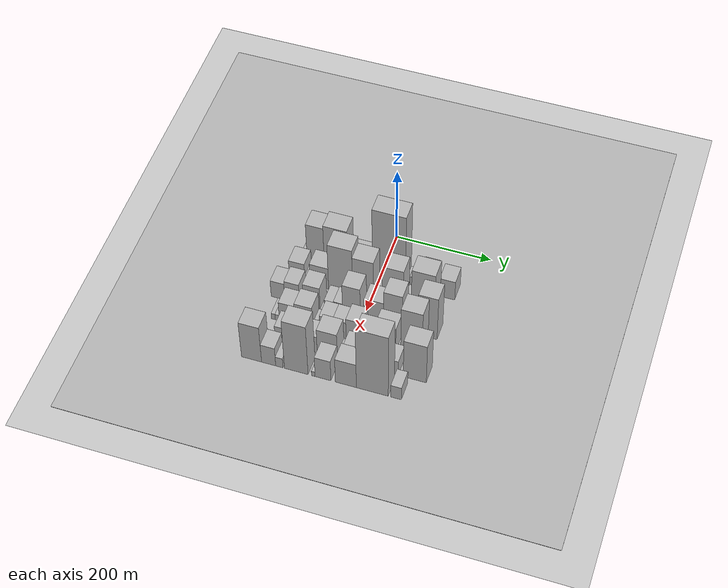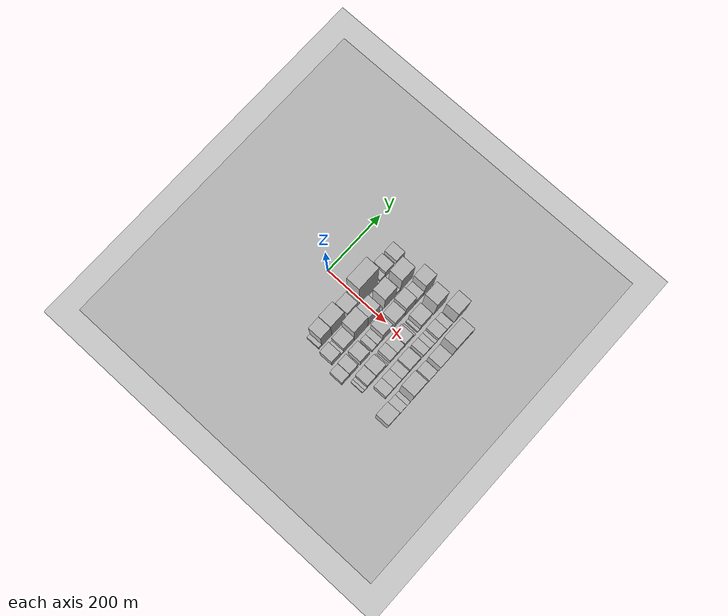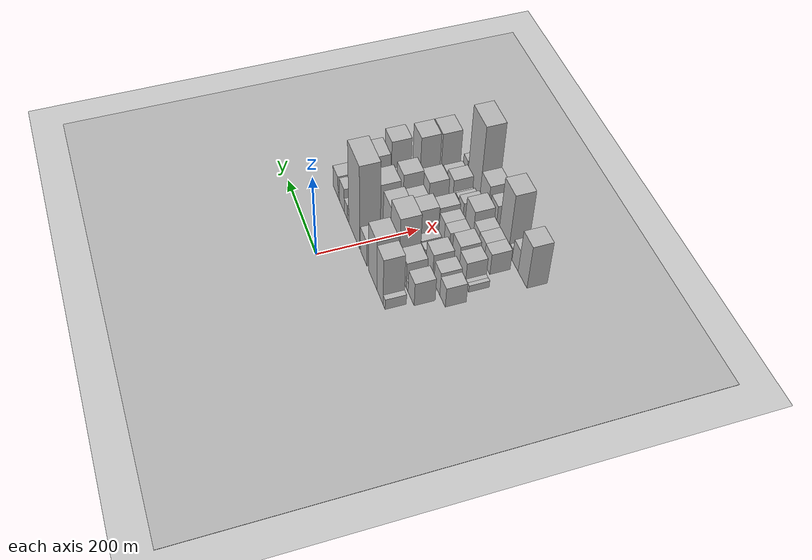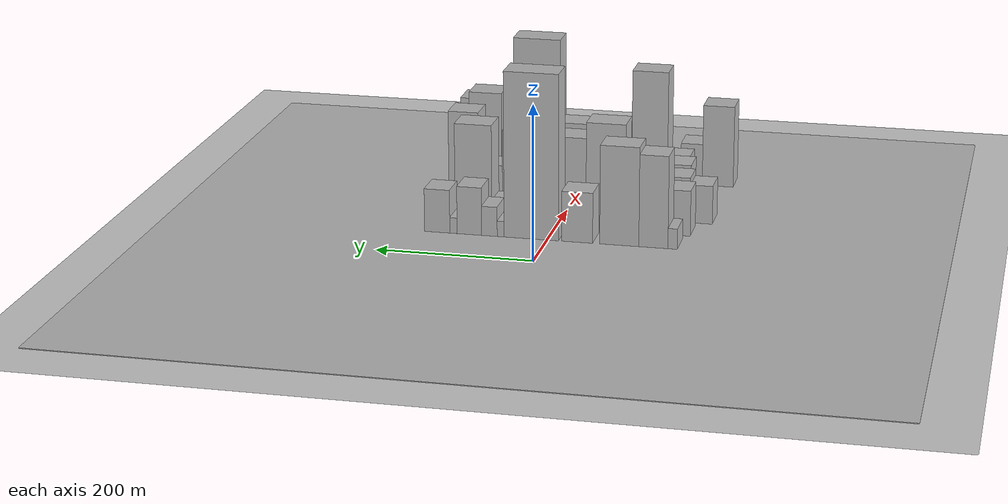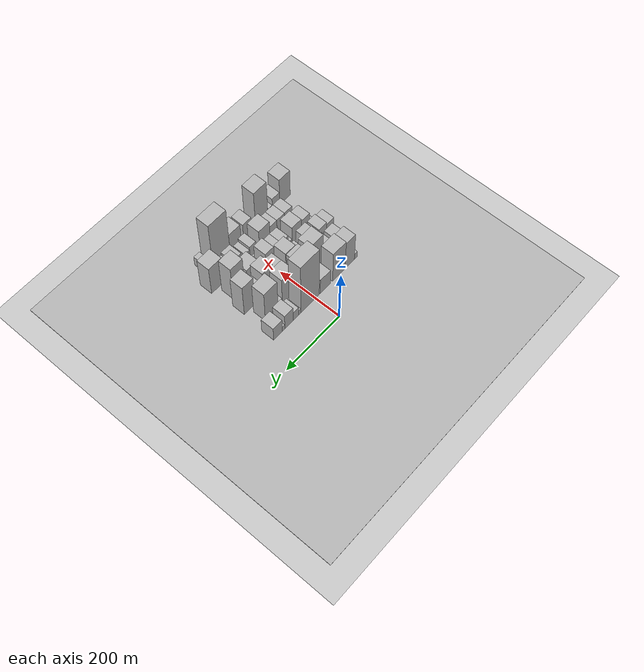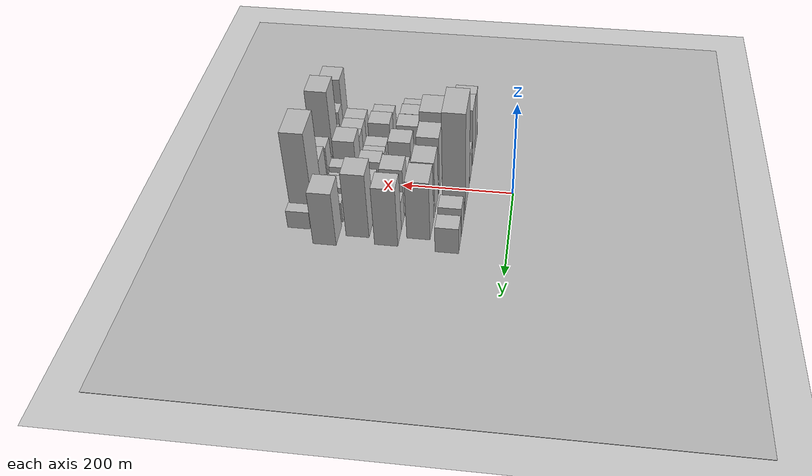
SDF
<sdf version="1.6">
 <world name="default">
  <include><name>ground_plane_1</name><uri>model://HANNAS_ground_plane</uri></include>
  <include>
   <name>ground_plane_2</name>
   <uri>model://HANNAS_ground_plane</uri>
   <pose>100 0 0  0 0 0</pose>
  </include>
  <model name="building_24">
   <static>1</static>
   <pose>100.0000 -158.5348 0 0.000000 0.000000 0.000000</pose>
   <link name="link">
    <pose>0 0 13.50 0 0 0</pose>
    <collision name="collision"><geometry><box><size>40.0000 11.7615 27.0000</size></box></geometry></collision>
    <visual name="visual">
     <cast_shadows>0</cast_shadows>
     <geometry><box><size>40.0000 11.7615 27.0000</size></box></geometry>
     <material>
      <script>
       <uri>model://HANNAS_wall/materials/scripts</uri>
       <uri>model://HANNAS_wall/materials/textures</uri>
       <name>vrc/HANNAS_wall</name>
      </script>
     </material>
    </visual>
   </link>
  </model>
  <model name="building_25">
   <static>1</static>
   <pose>100.0000 -134.3453 0 0.000000 0.000000 0.000000</pose>
   <link name="link">
    <pose>0 0 60.00 0 0 0</pose>
    <collision name="collision"><geometry><box><size>40.0000 36.6176 120.0000</size></box></geometry></collision>
    <visual name="visual">
     <cast_shadows>0</cast_shadows>
     <geometry><box><size>40.0000 36.6176 120.0000</size></box></geometry>
     <material>
      <script>
       <uri>model://HANNAS_wall/materials/scripts</uri>
       <uri>model://HANNAS_wall/materials/textures</uri>
       <name>vrc/HANNAS_wall</name>
      </script>
     </material>
    </visual>
   </link>
  </model>
  <model name="building_26">
   <static>1</static>
   <pose>100.0000 -91.2927 0 0.000000 0.000000 0.000000</pose>
   <link name="link">
    <pose>0 0 64.50 0 0 0</pose>
    <collision name="collision"><geometry><box><size>40.0000 49.4875 129.0000</size></box></geometry></collision>
    <visual name="visual">
     <cast_shadows>0</cast_shadows>
     <geometry><box><size>40.0000 49.4875 129.0000</size></box></geometry>
     <material>
      <script>
       <uri>model://HANNAS_wall/materials/scripts</uri>
       <uri>model://HANNAS_wall/materials/textures</uri>
       <name>vrc/HANNAS_wall</name>
      </script>
     </material>
    </visual>
   </link>
  </model>
  <model name="building_27">
   <static>1</static>
   <pose>100.0000 -37.7616 0 0.000000 0.000000 0.000000</pose>
   <link name="link">
    <pose>0 0 33.00 0 0 0</pose>
    <collision name="collision"><geometry><box><size>40.0000 39.5747 66.0000</size></box></geometry></collision>
    <visual name="visual">
     <cast_shadows>0</cast_shadows>
     <geometry><box><size>40.0000 39.5747 66.0000</size></box></geometry>
     <material>
      <script>
       <uri>model://HANNAS_wall/materials/scripts</uri>
       <uri>model://HANNAS_wall/materials/textures</uri>
       <name>vrc/HANNAS_wall</name>
      </script>
     </material>
    </visual>
   </link>
  </model>
  <model name="building_28">
   <static>1</static>
   <pose>100.0000 20.9367 0 0.000000 0.000000 0.000000</pose>
   <link name="link">
    <pose>0 0 108.00 0 0 0</pose>
    <collision name="collision"><geometry><box><size>40.0000 69.8217 216.0000</size></box></geometry></collision>
    <visual name="visual">
     <cast_shadows>0</cast_shadows>
     <geometry><box><size>40.0000 69.8217 216.0000</size></box></geometry>
     <material>
      <script>
       <uri>model://HANNAS_wall/materials/scripts</uri>
       <uri>model://HANNAS_wall/materials/textures</uri>
       <name>vrc/HANNAS_wall</name>
      </script>
     </material>
    </visual>
   </link>
  </model>
  <model name="building_29">
   <static>1</static>
   <pose>100.0000 60.2967 0 0.000000 0.000000 0.000000</pose>
   <link name="link">
    <pose>0 0 10.50 0 0 0</pose>
    <collision name="collision"><geometry><box><size>40.0000 8.8983 21.0000</size></box></geometry></collision>
    <visual name="visual">
     <cast_shadows>0</cast_shadows>
     <geometry><box><size>40.0000 8.8983 21.0000</size></box></geometry>
     <material>
      <script>
       <uri>model://HANNAS_wall/materials/scripts</uri>
       <uri>model://HANNAS_wall/materials/textures</uri>
       <name>vrc/HANNAS_wall</name>
      </script>
     </material>
    </visual>
   </link>
  </model>
  <model name="building_30">
   <static>1</static>
   <pose>100.0000 74.8387 0 0.000000 0.000000 0.000000</pose>
   <link name="link">
    <pose>0 0 19.50 0 0 0</pose>
    <collision name="collision"><geometry><box><size>40.0000 20.1858 39.0000</size></box></geometry></collision>
    <visual name="visual">
     <cast_shadows>0</cast_shadows>
     <geometry><box><size>40.0000 20.1858 39.0000</size></box></geometry>
     <material>
      <script>
       <uri>model://HANNAS_wall/materials/scripts</uri>
       <uri>model://HANNAS_wall/materials/textures</uri>
       <name>vrc/HANNAS_wall</name>
      </script>
     </material>
    </visual>
   </link>
  </model>
  <model name="building_31">
   <static>1</static>
   <pose>100.0000 100.7868 0 0.000000 0.000000 0.000000</pose>
   <link name="link">
    <pose>0 0 31.50 0 0 0</pose>
    <collision name="collision"><geometry><box><size>40.0000 31.7105 63.0000</size></box></geometry></collision>
    <visual name="visual">
     <cast_shadows>0</cast_shadows>
     <geometry><box><size>40.0000 31.7105 63.0000</size></box></geometry>
     <material>
      <script>
       <uri>model://HANNAS_wall/materials/scripts</uri>
       <uri>model://HANNAS_wall/materials/textures</uri>
       <name>vrc/HANNAS_wall</name>
      </script>
     </material>
    </visual>
   </link>
  </model>
  <model name="building_32">
   <static>1</static>
   <pose>100.0000 121.3697 0 0.000000 0.000000 0.000000</pose>
   <link name="link">
    <pose>0 0 10.50 0 0 0</pose>
    <collision name="collision"><geometry><box><size>40.0000 9.4551 21.0000</size></box></geometry></collision>
    <visual name="visual">
     <cast_shadows>0</cast_shadows>
     <geometry><box><size>40.0000 9.4551 21.0000</size></box></geometry>
     <material>
      <script>
       <uri>model://HANNAS_wall/materials/scripts</uri>
       <uri>model://HANNAS_wall/materials/textures</uri>
       <name>vrc/HANNAS_wall</name>
      </script>
     </material>
    </visual>
   </link>
  </model>
  <model name="building_33">
   <static>1</static>
   <pose>100.0000 142.5122 0 0.000000 0.000000 0.000000</pose>
   <link name="link">
    <pose>0 0 28.50 0 0 0</pose>
    <collision name="collision"><geometry><box><size>40.0000 32.8300 57.0000</size></box></geometry></collision>
    <visual name="visual">
     <cast_shadows>0</cast_shadows>
     <geometry><box><size>40.0000 32.8300 57.0000</size></box></geometry>
     <material>
      <script>
       <uri>model://HANNAS_wall/materials/scripts</uri>
       <uri>model://HANNAS_wall/materials/textures</uri>
       <name>vrc/HANNAS_wall</name>
      </script>
     </material>
    </visual>
   </link>
  </model>
  <model name="building_69">
   <static>1</static>
   <pose>152.0000 -155.6423 0 0.000000 0.000000 0.000000</pose>
   <link name="link">
    <pose>0 0 30.00 0 0 0</pose>
    <collision name="collision"><geometry><box><size>40.0000 33.0803 60.0000</size></box></geometry></collision>
    <visual name="visual">
     <cast_shadows>0</cast_shadows>
     <geometry><box><size>40.0000 33.0803 60.0000</size></box></geometry>
     <material>
      <script>
       <uri>model://HANNAS_wall/materials/scripts</uri>
       <uri>model://HANNAS_wall/materials/textures</uri>
       <name>vrc/HANNAS_wall</name>
      </script>
     </material>
    </visual>
   </link>
  </model>
  <model name="building_70">
   <static>1</static>
   <pose>152.0000 -133.5895 0 0.000000 0.000000 0.000000</pose>
   <link name="link">
    <pose>0 0 12.00 0 0 0</pose>
    <collision name="collision"><geometry><box><size>40.0000 11.0254 24.0000</size></box></geometry></collision>
    <visual name="visual">
     <cast_shadows>0</cast_shadows>
     <geometry><box><size>40.0000 11.0254 24.0000</size></box></geometry>
     <material>
      <script>
       <uri>model://HANNAS_wall/materials/scripts</uri>
       <uri>model://HANNAS_wall/materials/textures</uri>
       <name>vrc/HANNAS_wall</name>
      </script>
     </material>
    </visual>
   </link>
  </model>
  <model name="building_71">
   <static>1</static>
   <pose>152.0000 -108.5377 0 0.000000 0.000000 0.000000</pose>
   <link name="link">
    <pose>0 0 33.00 0 0 0</pose>
    <collision name="collision"><geometry><box><size>40.0000 39.0782 66.0000</size></box></geometry></collision>
    <visual name="visual">
     <cast_shadows>0</cast_shadows>
     <geometry><box><size>40.0000 39.0782 66.0000</size></box></geometry>
     <material>
      <script>
       <uri>model://HANNAS_wall/materials/scripts</uri>
       <uri>model://HANNAS_wall/materials/textures</uri>
       <name>vrc/HANNAS_wall</name>
      </script>
     </material>
    </visual>
   </link>
  </model>
  <model name="building_72">
   <static>1</static>
   <pose>152.0000 -63.7319 0 0.000000 0.000000 0.000000</pose>
   <link name="link">
    <pose>0 0 70.50 0 0 0</pose>
    <collision name="collision"><geometry><box><size>40.0000 50.5334 141.0000</size></box></geometry></collision>
    <visual name="visual">
     <cast_shadows>0</cast_shadows>
     <geometry><box><size>40.0000 50.5334 141.0000</size></box></geometry>
     <material>
      <script>
       <uri>model://HANNAS_wall/materials/scripts</uri>
       <uri>model://HANNAS_wall/materials/textures</uri>
       <name>vrc/HANNAS_wall</name>
      </script>
     </material>
    </visual>
   </link>
  </model>
  <model name="building_73">
   <static>1</static>
   <pose>152.0000 -16.3836 0 0.000000 0.000000 0.000000</pose>
   <link name="link">
    <pose>0 0 60.00 0 0 0</pose>
    <collision name="collision"><geometry><box><size>40.0000 44.1631 120.0000</size></box></geometry></collision>
    <visual name="visual">
     <cast_shadows>0</cast_shadows>
     <geometry><box><size>40.0000 44.1631 120.0000</size></box></geometry>
     <material>
      <script>
       <uri>model://HANNAS_wall/materials/scripts</uri>
       <uri>model://HANNAS_wall/materials/textures</uri>
       <name>vrc/HANNAS_wall</name>
      </script>
     </material>
    </visual>
   </link>
  </model>
  <model name="building_74">
   <static>1</static>
   <pose>152.0000 11.5250 0 0.000000 0.000000 0.000000</pose>
   <link name="link">
    <pose>0 0 12.00 0 0 0</pose>
    <collision name="collision"><geometry><box><size>40.0000 11.6542 24.0000</size></box></geometry></collision>
    <visual name="visual">
     <cast_shadows>0</cast_shadows>
     <geometry><box><size>40.0000 11.6542 24.0000</size></box></geometry>
     <material>
      <script>
       <uri>model://HANNAS_wall/materials/scripts</uri>
       <uri>model://HANNAS_wall/materials/textures</uri>
       <name>vrc/HANNAS_wall</name>
      </script>
     </material>
    </visual>
   </link>
  </model>
  <model name="building_75">
   <static>1</static>
   <pose>152.0000 45.7108 0 0.000000 0.000000 0.000000</pose>
   <link name="link">
    <pose>0 0 58.50 0 0 0</pose>
    <collision name="collision"><geometry><box><size>40.0000 44.7173 117.0000</size></box></geometry></collision>
    <visual name="visual">
     <cast_shadows>0</cast_shadows>
     <geometry><box><size>40.0000 44.7173 117.0000</size></box></geometry>
     <material>
      <script>
       <uri>model://HANNAS_wall/materials/scripts</uri>
       <uri>model://HANNAS_wall/materials/textures</uri>
       <name>vrc/HANNAS_wall</name>
      </script>
     </material>
    </visual>
   </link>
  </model>
  <model name="building_76">
   <static>1</static>
   <pose>152.0000 76.0577 0 0.000000 0.000000 0.000000</pose>
   <link name="link">
    <pose>0 0 15.00 0 0 0</pose>
    <collision name="collision"><geometry><box><size>40.0000 15.9766 30.0000</size></box></geometry></collision>
    <visual name="visual">
     <cast_shadows>0</cast_shadows>
     <geometry><box><size>40.0000 15.9766 30.0000</size></box></geometry>
     <material>
      <script>
       <uri>model://HANNAS_wall/materials/scripts</uri>
       <uri>model://HANNAS_wall/materials/textures</uri>
       <name>vrc/HANNAS_wall</name>
      </script>
     </material>
    </visual>
   </link>
  </model>
  <model name="building_77">
   <static>1</static>
   <pose>152.0000 108.1435 0 0.000000 0.000000 0.000000</pose>
   <link name="link">
    <pose>0 0 64.50 0 0 0</pose>
    <collision name="collision"><geometry><box><size>40.0000 48.1950 129.0000</size></box></geometry></collision>
    <visual name="visual">
     <cast_shadows>0</cast_shadows>
     <geometry><box><size>40.0000 48.1950 129.0000</size></box></geometry>
     <material>
      <script>
       <uri>model://HANNAS_wall/materials/scripts</uri>
       <uri>model://HANNAS_wall/materials/textures</uri>
       <name>vrc/HANNAS_wall</name>
      </script>
     </material>
    </visual>
   </link>
  </model>
  <model name="building_117">
   <static>1</static>
   <pose>204.0000 -177.6629 0 0.000000 0.000000 0.000000</pose>
   <link name="link">
    <pose>0 0 25.50 0 0 0</pose>
    <collision name="collision"><geometry><box><size>40.0000 28.9055 51.0000</size></box></geometry></collision>
    <visual name="visual">
     <cast_shadows>0</cast_shadows>
     <geometry><box><size>40.0000 28.9055 51.0000</size></box></geometry>
     <material>
      <script>
       <uri>model://HANNAS_wall/materials/scripts</uri>
       <uri>model://HANNAS_wall/materials/textures</uri>
       <name>vrc/HANNAS_wall</name>
      </script>
     </material>
    </visual>
   </link>
  </model>
  <model name="building_118">
   <static>1</static>
   <pose>204.0000 -147.7347 0 0.000000 0.000000 0.000000</pose>
   <link name="link">
    <pose>0 0 30.00 0 0 0</pose>
    <collision name="collision"><geometry><box><size>40.0000 30.9509 60.0000</size></box></geometry></collision>
    <visual name="visual">
     <cast_shadows>0</cast_shadows>
     <geometry><box><size>40.0000 30.9509 60.0000</size></box></geometry>
     <material>
      <script>
       <uri>model://HANNAS_wall/materials/scripts</uri>
       <uri>model://HANNAS_wall/materials/textures</uri>
       <name>vrc/HANNAS_wall</name>
      </script>
     </material>
    </visual>
   </link>
  </model>
  <model name="building_119">
   <static>1</static>
   <pose>204.0000 -106.5356 0 0.000000 0.000000 0.000000</pose>
   <link name="link">
    <pose>0 0 33.00 0 0 0</pose>
    <collision name="collision"><geometry><box><size>40.0000 35.4473 66.0000</size></box></geometry></collision>
    <visual name="visual">
     <cast_shadows>0</cast_shadows>
     <geometry><box><size>40.0000 35.4473 66.0000</size></box></geometry>
     <material>
      <script>
       <uri>model://HANNAS_wall/materials/scripts</uri>
       <uri>model://HANNAS_wall/materials/textures</uri>
       <name>vrc/HANNAS_wall</name>
      </script>
     </material>
    </visual>
   </link>
  </model>
  <model name="building_120">
   <static>1</static>
   <pose>204.0000 -70.2847 0 0.000000 0.000000 0.000000</pose>
   <link name="link">
    <pose>0 0 16.50 0 0 0</pose>
    <collision name="collision"><geometry><box><size>40.0000 19.0546 33.0000</size></box></geometry></collision>
    <visual name="visual">
     <cast_shadows>0</cast_shadows>
     <geometry><box><size>40.0000 19.0546 33.0000</size></box></geometry>
     <material>
      <script>
       <uri>model://HANNAS_wall/materials/scripts</uri>
       <uri>model://HANNAS_wall/materials/textures</uri>
       <name>vrc/HANNAS_wall</name>
      </script>
     </material>
    </visual>
   </link>
  </model>
  <model name="building_121">
   <static>1</static>
   <pose>204.0000 -51.2398 0 0.000000 0.000000 0.000000</pose>
   <link name="link">
    <pose>0 0 18.00 0 0 0</pose>
    <collision name="collision"><geometry><box><size>40.0000 19.0352 36.0000</size></box></geometry></collision>
    <visual name="visual">
     <cast_shadows>0</cast_shadows>
     <geometry><box><size>40.0000 19.0352 36.0000</size></box></geometry>
     <material>
      <script>
       <uri>model://HANNAS_wall/materials/scripts</uri>
       <uri>model://HANNAS_wall/materials/textures</uri>
       <name>vrc/HANNAS_wall</name>
      </script>
     </material>
    </visual>
   </link>
  </model>
  <model name="building_122">
   <static>1</static>
   <pose>204.0000 -23.2414 0 0.000000 0.000000 0.000000</pose>
   <link name="link">
    <pose>0 0 48.00 0 0 0</pose>
    <collision name="collision"><geometry><box><size>40.0000 36.9616 96.0000</size></box></geometry></collision>
    <visual name="visual">
     <cast_shadows>0</cast_shadows>
     <geometry><box><size>40.0000 36.9616 96.0000</size></box></geometry>
     <material>
      <script>
       <uri>model://HANNAS_wall/materials/scripts</uri>
       <uri>model://HANNAS_wall/materials/textures</uri>
       <name>vrc/HANNAS_wall</name>
      </script>
     </material>
    </visual>
   </link>
  </model>
  <model name="building_123">
   <static>1</static>
   <pose>204.0000 -0.4595 0 0.000000 0.000000 0.000000</pose>
   <link name="link">
    <pose>0 0 10.50 0 0 0</pose>
    <collision name="collision"><geometry><box><size>40.0000 8.6023 21.0000</size></box></geometry></collision>
    <visual name="visual">
     <cast_shadows>0</cast_shadows>
     <geometry><box><size>40.0000 8.6023 21.0000</size></box></geometry>
     <material>
      <script>
       <uri>model://HANNAS_wall/materials/scripts</uri>
       <uri>model://HANNAS_wall/materials/textures</uri>
       <name>vrc/HANNAS_wall</name>
      </script>
     </material>
    </visual>
   </link>
  </model>
  <model name="building_124">
   <static>1</static>
   <pose>204.0000 23.7971 0 0.000000 0.000000 0.000000</pose>
   <link name="link">
    <pose>0 0 36.00 0 0 0</pose>
    <collision name="collision"><geometry><box><size>40.0000 39.9108 72.0000</size></box></geometry></collision>
    <visual name="visual">
     <cast_shadows>0</cast_shadows>
     <geometry><box><size>40.0000 39.9108 72.0000</size></box></geometry>
     <material>
      <script>
       <uri>model://HANNAS_wall/materials/scripts</uri>
       <uri>model://HANNAS_wall/materials/textures</uri>
       <name>vrc/HANNAS_wall</name>
      </script>
     </material>
    </visual>
   </link>
  </model>
  <model name="building_125">
   <static>1</static>
   <pose>204.0000 62.9266 0 0.000000 0.000000 0.000000</pose>
   <link name="link">
    <pose>0 0 54.00 0 0 0</pose>
    <collision name="collision"><geometry><box><size>40.0000 38.3483 108.0000</size></box></geometry></collision>
    <visual name="visual">
     <cast_shadows>0</cast_shadows>
     <geometry><box><size>40.0000 38.3483 108.0000</size></box></geometry>
     <material>
      <script>
       <uri>model://HANNAS_wall/materials/scripts</uri>
       <uri>model://HANNAS_wall/materials/textures</uri>
       <name>vrc/HANNAS_wall</name>
      </script>
     </material>
    </visual>
   </link>
  </model>
  <model name="building_126">
   <static>1</static>
   <pose>204.0000 97.9361 0 0.000000 0.000000 0.000000</pose>
   <link name="link">
    <pose>0 0 30.00 0 0 0</pose>
    <collision name="collision"><geometry><box><size>40.0000 31.6707 60.0000</size></box></geometry></collision>
    <visual name="visual">
     <cast_shadows>0</cast_shadows>
     <geometry><box><size>40.0000 31.6707 60.0000</size></box></geometry>
     <material>
      <script>
       <uri>model://HANNAS_wall/materials/scripts</uri>
       <uri>model://HANNAS_wall/materials/textures</uri>
       <name>vrc/HANNAS_wall</name>
      </script>
     </material>
    </visual>
   </link>
  </model>
  <model name="building_127">
   <static>1</static>
   <pose>204.0000 133.6687 0 0.000000 0.000000 0.000000</pose>
   <link name="link">
    <pose>0 0 64.50 0 0 0</pose>
    <collision name="collision"><geometry><box><size>40.0000 39.7944 129.0000</size></box></geometry></collision>
    <visual name="visual">
     <cast_shadows>0</cast_shadows>
     <geometry><box><size>40.0000 39.7944 129.0000</size></box></geometry>
     <material>
      <script>
       <uri>model://HANNAS_wall/materials/scripts</uri>
       <uri>model://HANNAS_wall/materials/textures</uri>
       <name>vrc/HANNAS_wall</name>
      </script>
     </material>
    </visual>
   </link>
  </model>
  <model name="building_170">
   <static>1</static>
   <pose>256.0000 -168.5924 0 0.000000 0.000000 0.000000</pose>
   <link name="link">
    <pose>0 0 9.00 0 0 0</pose>
    <collision name="collision"><geometry><box><size>40.0000 7.9097 18.0000</size></box></geometry></collision>
    <visual name="visual">
     <cast_shadows>0</cast_shadows>
     <geometry><box><size>40.0000 7.9097 18.0000</size></box></geometry>
     <material>
      <script>
       <uri>model://HANNAS_wall/materials/scripts</uri>
       <uri>model://HANNAS_wall/materials/textures</uri>
       <name>vrc/HANNAS_wall</name>
      </script>
     </material>
    </visual>
   </link>
  </model>
  <model name="building_171">
   <static>1</static>
   <pose>256.0000 -160.1804 0 0.000000 0.000000 0.000000</pose>
   <link name="link">
    <pose>0 0 9.00 0 0 0</pose>
    <collision name="collision"><geometry><box><size>40.0000 8.9143 18.0000</size></box></geometry></collision>
    <visual name="visual">
     <cast_shadows>0</cast_shadows>
     <geometry><box><size>40.0000 8.9143 18.0000</size></box></geometry>
     <material>
      <script>
       <uri>model://HANNAS_wall/materials/scripts</uri>
       <uri>model://HANNAS_wall/materials/textures</uri>
       <name>vrc/HANNAS_wall</name>
      </script>
     </material>
    </visual>
   </link>
  </model>
  <model name="building_172">
   <static>1</static>
   <pose>256.0000 -139.3355 0 0.000000 0.000000 0.000000</pose>
   <link name="link">
    <pose>0 0 30.00 0 0 0</pose>
    <collision name="collision"><geometry><box><size>40.0000 32.7756 60.0000</size></box></geometry></collision>
    <visual name="visual">
     <cast_shadows>0</cast_shadows>
     <geometry><box><size>40.0000 32.7756 60.0000</size></box></geometry>
     <material>
      <script>
       <uri>model://HANNAS_wall/materials/scripts</uri>
       <uri>model://HANNAS_wall/materials/textures</uri>
       <name>vrc/HANNAS_wall</name>
      </script>
     </material>
    </visual>
   </link>
  </model>
  <model name="building_173">
   <static>1</static>
   <pose>256.0000 -104.7134 0 0.000000 0.000000 0.000000</pose>
   <link name="link">
    <pose>0 0 34.50 0 0 0</pose>
    <collision name="collision"><geometry><box><size>40.0000 36.4687 69.0000</size></box></geometry></collision>
    <visual name="visual">
     <cast_shadows>0</cast_shadows>
     <geometry><box><size>40.0000 36.4687 69.0000</size></box></geometry>
     <material>
      <script>
       <uri>model://HANNAS_wall/materials/scripts</uri>
       <uri>model://HANNAS_wall/materials/textures</uri>
       <name>vrc/HANNAS_wall</name>
      </script>
     </material>
    </visual>
   </link>
  </model>
  <model name="building_174">
   <static>1</static>
   <pose>256.0000 -81.9794 0 0.000000 0.000000 0.000000</pose>
   <link name="link">
    <pose>0 0 9.00 0 0 0</pose>
    <collision name="collision"><geometry><box><size>40.0000 8.9992 18.0000</size></box></geometry></collision>
    <visual name="visual">
     <cast_shadows>0</cast_shadows>
     <geometry><box><size>40.0000 8.9992 18.0000</size></box></geometry>
     <material>
      <script>
       <uri>model://HANNAS_wall/materials/scripts</uri>
       <uri>model://HANNAS_wall/materials/textures</uri>
       <name>vrc/HANNAS_wall</name>
      </script>
     </material>
    </visual>
   </link>
  </model>
  <model name="building_175">
   <static>1</static>
   <pose>256.0000 -57.8144 0 0.000000 0.000000 0.000000</pose>
   <link name="link">
    <pose>0 0 25.50 0 0 0</pose>
    <collision name="collision"><geometry><box><size>40.0000 27.3308 51.0000</size></box></geometry></collision>
    <visual name="visual">
     <cast_shadows>0</cast_shadows>
     <geometry><box><size>40.0000 27.3308 51.0000</size></box></geometry>
     <material>
      <script>
       <uri>model://HANNAS_wall/materials/scripts</uri>
       <uri>model://HANNAS_wall/materials/textures</uri>
       <name>vrc/HANNAS_wall</name>
      </script>
     </material>
    </visual>
   </link>
  </model>
  <model name="building_176">
   <static>1</static>
   <pose>256.0000 -30.4677 0 0.000000 0.000000 0.000000</pose>
   <link name="link">
    <pose>0 0 25.50 0 0 0</pose>
    <collision name="collision"><geometry><box><size>40.0000 27.3625 51.0000</size></box></geometry></collision>
    <visual name="visual">
     <cast_shadows>0</cast_shadows>
     <geometry><box><size>40.0000 27.3625 51.0000</size></box></geometry>
     <material>
      <script>
       <uri>model://HANNAS_wall/materials/scripts</uri>
       <uri>model://HANNAS_wall/materials/textures</uri>
       <name>vrc/HANNAS_wall</name>
      </script>
     </material>
    </visual>
   </link>
  </model>
  <model name="building_177">
   <static>1</static>
   <pose>256.0000 -0.8448 0 0.000000 0.000000 0.000000</pose>
   <link name="link">
    <pose>0 0 31.50 0 0 0</pose>
    <collision name="collision"><geometry><box><size>40.0000 31.8834 63.0000</size></box></geometry></collision>
    <visual name="visual">
     <cast_shadows>0</cast_shadows>
     <geometry><box><size>40.0000 31.8834 63.0000</size></box></geometry>
     <material>
      <script>
       <uri>model://HANNAS_wall/materials/scripts</uri>
       <uri>model://HANNAS_wall/materials/textures</uri>
       <name>vrc/HANNAS_wall</name>
      </script>
     </material>
    </visual>
   </link>
  </model>
  <model name="building_178">
   <static>1</static>
   <pose>256.0000 23.0450 0 0.000000 0.000000 0.000000</pose>
   <link name="link">
    <pose>0 0 9.00 0 0 0</pose>
    <collision name="collision"><geometry><box><size>40.0000 7.8961 18.0000</size></box></geometry></collision>
    <visual name="visual">
     <cast_shadows>0</cast_shadows>
     <geometry><box><size>40.0000 7.8961 18.0000</size></box></geometry>
     <material>
      <script>
       <uri>model://HANNAS_wall/materials/scripts</uri>
       <uri>model://HANNAS_wall/materials/textures</uri>
       <name>vrc/HANNAS_wall</name>
      </script>
     </material>
    </visual>
   </link>
  </model>
  <model name="building_179">
   <static>1</static>
   <pose>256.0000 38.4373 0 0.000000 0.000000 0.000000</pose>
   <link name="link">
    <pose>0 0 9.00 0 0 0</pose>
    <collision name="collision"><geometry><box><size>40.0000 8.8885 18.0000</size></box></geometry></collision>
    <visual name="visual">
     <cast_shadows>0</cast_shadows>
     <geometry><box><size>40.0000 8.8885 18.0000</size></box></geometry>
     <material>
      <script>
       <uri>model://HANNAS_wall/materials/scripts</uri>
       <uri>model://HANNAS_wall/materials/textures</uri>
       <name>vrc/HANNAS_wall</name>
      </script>
     </material>
    </visual>
   </link>
  </model>
  <model name="building_180">
   <static>1</static>
   <pose>256.0000 64.0657 0 0.000000 0.000000 0.000000</pose>
   <link name="link">
    <pose>0 0 36.00 0 0 0</pose>
    <collision name="collision"><geometry><box><size>40.0000 42.3682 72.0000</size></box></geometry></collision>
    <visual name="visual">
     <cast_shadows>0</cast_shadows>
     <geometry><box><size>40.0000 42.3682 72.0000</size></box></geometry>
     <material>
      <script>
       <uri>model://HANNAS_wall/materials/scripts</uri>
       <uri>model://HANNAS_wall/materials/textures</uri>
       <name>vrc/HANNAS_wall</name>
      </script>
     </material>
    </visual>
   </link>
  </model>
  <model name="building_181">
   <static>1</static>
   <pose>256.0000 116.9688 0 0.000000 0.000000 0.000000</pose>
   <link name="link">
    <pose>0 0 70.50 0 0 0</pose>
    <collision name="collision"><geometry><box><size>40.0000 43.4380 141.0000</size></box></geometry></collision>
    <visual name="visual">
     <cast_shadows>0</cast_shadows>
     <geometry><box><size>40.0000 43.4380 141.0000</size></box></geometry>
     <material>
      <script>
       <uri>model://HANNAS_wall/materials/scripts</uri>
       <uri>model://HANNAS_wall/materials/textures</uri>
       <name>vrc/HANNAS_wall</name>
      </script>
     </material>
    </visual>
   </link>
  </model>
  <model name="building_225">
   <static>1</static>
   <pose>308.0000 -130.4877 0 0.000000 0.000000 0.000000</pose>
   <link name="link">
    <pose>0 0 27.00 0 0 0</pose>
    <collision name="collision"><geometry><box><size>40.0000 29.1803 54.0000</size></box></geometry></collision>
    <visual name="visual">
     <cast_shadows>0</cast_shadows>
     <geometry><box><size>40.0000 29.1803 54.0000</size></box></geometry>
     <material>
      <script>
       <uri>model://HANNAS_wall/materials/scripts</uri>
       <uri>model://HANNAS_wall/materials/textures</uri>
       <name>vrc/HANNAS_wall</name>
      </script>
     </material>
    </visual>
   </link>
  </model>
  <model name="building_226">
   <static>1</static>
   <pose>308.0000 -100.9465 0 0.000000 0.000000 0.000000</pose>
   <link name="link">
    <pose>0 0 27.00 0 0 0</pose>
    <collision name="collision"><geometry><box><size>40.0000 29.9021 54.0000</size></box></geometry></collision>
    <visual name="visual">
     <cast_shadows>0</cast_shadows>
     <geometry><box><size>40.0000 29.9021 54.0000</size></box></geometry>
     <material>
      <script>
       <uri>model://HANNAS_wall/materials/scripts</uri>
       <uri>model://HANNAS_wall/materials/textures</uri>
       <name>vrc/HANNAS_wall</name>
      </script>
     </material>
    </visual>
   </link>
  </model>
  <model name="building_227">
   <static>1</static>
   <pose>308.0000 -72.1960 0 0.000000 0.000000 0.000000</pose>
   <link name="link">
    <pose>0 0 27.00 0 0 0</pose>
    <collision name="collision"><geometry><box><size>40.0000 27.5989 54.0000</size></box></geometry></collision>
    <visual name="visual">
     <cast_shadows>0</cast_shadows>
     <geometry><box><size>40.0000 27.5989 54.0000</size></box></geometry>
     <material>
      <script>
       <uri>model://HANNAS_wall/materials/scripts</uri>
       <uri>model://HANNAS_wall/materials/textures</uri>
       <name>vrc/HANNAS_wall</name>
      </script>
     </material>
    </visual>
   </link>
  </model>
  <model name="building_228">
   <static>1</static>
   <pose>308.0000 -37.8794 0 0.000000 0.000000 0.000000</pose>
   <link name="link">
    <pose>0 0 39.00 0 0 0</pose>
    <collision name="collision"><geometry><box><size>40.0000 41.0342 78.0000</size></box></geometry></collision>
    <visual name="visual">
     <cast_shadows>0</cast_shadows>
     <geometry><box><size>40.0000 41.0342 78.0000</size></box></geometry>
     <material>
      <script>
       <uri>model://HANNAS_wall/materials/scripts</uri>
       <uri>model://HANNAS_wall/materials/textures</uri>
       <name>vrc/HANNAS_wall</name>
      </script>
     </material>
    </visual>
   </link>
  </model>
  <model name="building_229">
   <static>1</static>
   <pose>308.0000 -13.9209 0 0.000000 0.000000 0.000000</pose>
   <link name="link">
    <pose>0 0 7.50 0 0 0</pose>
    <collision name="collision"><geometry><box><size>40.0000 6.8829 15.0000</size></box></geometry></collision>
    <visual name="visual">
     <cast_shadows>0</cast_shadows>
     <geometry><box><size>40.0000 6.8829 15.0000</size></box></geometry>
     <material>
      <script>
       <uri>model://HANNAS_wall/materials/scripts</uri>
       <uri>model://HANNAS_wall/materials/textures</uri>
       <name>vrc/HANNAS_wall</name>
      </script>
     </material>
    </visual>
   </link>
  </model>
  <model name="building_230">
   <static>1</static>
   <pose>308.0000 6.6875 0 0.000000 0.000000 0.000000</pose>
   <link name="link">
    <pose>0 0 24.00 0 0 0</pose>
    <collision name="collision"><geometry><box><size>40.0000 24.3337 48.0000</size></box></geometry></collision>
    <visual name="visual">
     <cast_shadows>0</cast_shadows>
     <geometry><box><size>40.0000 24.3337 48.0000</size></box></geometry>
     <material>
      <script>
       <uri>model://HANNAS_wall/materials/scripts</uri>
       <uri>model://HANNAS_wall/materials/textures</uri>
       <name>vrc/HANNAS_wall</name>
      </script>
     </material>
    </visual>
   </link>
  </model>
  <model name="building_231">
   <static>1</static>
   <pose>308.0000 28.2699 0 0.000000 0.000000 0.000000</pose>
   <link name="link">
    <pose>0 0 18.00 0 0 0</pose>
    <collision name="collision"><geometry><box><size>40.0000 18.8312 36.0000</size></box></geometry></collision>
    <visual name="visual">
     <cast_shadows>0</cast_shadows>
     <geometry><box><size>40.0000 18.8312 36.0000</size></box></geometry>
     <material>
      <script>
       <uri>model://HANNAS_wall/materials/scripts</uri>
       <uri>model://HANNAS_wall/materials/textures</uri>
       <name>vrc/HANNAS_wall</name>
      </script>
     </material>
    </visual>
   </link>
  </model>
  <model name="building_232">
   <static>1</static>
   <pose>308.0000 43.4308 0 0.000000 0.000000 0.000000</pose>
   <link name="link">
    <pose>0 0 13.50 0 0 0</pose>
    <collision name="collision"><geometry><box><size>40.0000 11.4905 27.0000</size></box></geometry></collision>
    <visual name="visual">
     <cast_shadows>0</cast_shadows>
     <geometry><box><size>40.0000 11.4905 27.0000</size></box></geometry>
     <material>
      <script>
       <uri>model://HANNAS_wall/materials/scripts</uri>
       <uri>model://HANNAS_wall/materials/textures</uri>
       <name>vrc/HANNAS_wall</name>
      </script>
     </material>
    </visual>
   </link>
  </model>
  <model name="building_233">
   <static>1</static>
   <pose>308.0000 65.5098 0 0.000000 0.000000 0.000000</pose>
   <link name="link">
    <pose>0 0 28.50 0 0 0</pose>
    <collision name="collision"><geometry><box><size>40.0000 32.6676 57.0000</size></box></geometry></collision>
    <visual name="visual">
     <cast_shadows>0</cast_shadows>
     <geometry><box><size>40.0000 32.6676 57.0000</size></box></geometry>
     <material>
      <script>
       <uri>model://HANNAS_wall/materials/scripts</uri>
       <uri>model://HANNAS_wall/materials/textures</uri>
       <name>vrc/HANNAS_wall</name>
      </script>
     </material>
    </visual>
   </link>
  </model>
  <model name="building_234">
   <static>1</static>
   <pose>308.0000 94.4286 0 0.000000 0.000000 0.000000</pose>
   <link name="link">
    <pose>0 0 22.50 0 0 0</pose>
    <collision name="collision"><geometry><box><size>40.0000 25.1699 45.0000</size></box></geometry></collision>
    <visual name="visual">
     <cast_shadows>0</cast_shadows>
     <geometry><box><size>40.0000 25.1699 45.0000</size></box></geometry>
     <material>
      <script>
       <uri>model://HANNAS_wall/materials/scripts</uri>
       <uri>model://HANNAS_wall/materials/textures</uri>
       <name>vrc/HANNAS_wall</name>
      </script>
     </material>
    </visual>
   </link>
  </model>
  <model name="building_235">
   <static>1</static>
   <pose>308.0000 140.1774 0 0.000000 0.000000 0.000000</pose>
   <link name="link">
    <pose>0 0 58.50 0 0 0</pose>
    <collision name="collision"><geometry><box><size>40.0000 46.3278 117.0000</size></box></geometry></collision>
    <visual name="visual">
     <cast_shadows>0</cast_shadows>
     <geometry><box><size>40.0000 46.3278 117.0000</size></box></geometry>
     <material>
      <script>
       <uri>model://HANNAS_wall/materials/scripts</uri>
       <uri>model://HANNAS_wall/materials/textures</uri>
       <name>vrc/HANNAS_wall</name>
      </script>
     </material>
    </visual>
   </link>
  </model>
  <model name="building_283">
   <static>1</static>
   <pose>360.0000 -175.1848 0 0.000000 0.000000 0.000000</pose>
   <link name="link">
    <pose>0 0 55.50 0 0 0</pose>
    <collision name="collision"><geometry><box><size>40.0000 41.5278 111.0000</size></box></geometry></collision>
    <visual name="visual">
     <cast_shadows>0</cast_shadows>
     <geometry><box><size>40.0000 41.5278 111.0000</size></box></geometry>
     <material>
      <script>
       <uri>model://HANNAS_wall/materials/scripts</uri>
       <uri>model://HANNAS_wall/materials/textures</uri>
       <name>vrc/HANNAS_wall</name>
      </script>
     </material>
    </visual>
   </link>
  </model>
  <model name="building_284">
   <static>1</static>
   <pose>360.0000 -139.8627 0 0.000000 0.000000 0.000000</pose>
   <link name="link">
    <pose>0 0 28.50 0 0 0</pose>
    <collision name="collision"><geometry><box><size>40.0000 29.1165 57.0000</size></box></geometry></collision>
    <visual name="visual">
     <cast_shadows>0</cast_shadows>
     <geometry><box><size>40.0000 29.1165 57.0000</size></box></geometry>
     <material>
      <script>
       <uri>model://HANNAS_wall/materials/scripts</uri>
       <uri>model://HANNAS_wall/materials/textures</uri>
       <name>vrc/HANNAS_wall</name>
      </script>
     </material>
    </visual>
   </link>
  </model>
  <model name="building_285">
   <static>1</static>
   <pose>360.0000 -117.8024 0 0.000000 0.000000 0.000000</pose>
   <link name="link">
    <pose>0 0 15.00 0 0 0</pose>
    <collision name="collision"><geometry><box><size>40.0000 15.0041 30.0000</size></box></geometry></collision>
    <visual name="visual">
     <cast_shadows>0</cast_shadows>
     <geometry><box><size>40.0000 15.0041 30.0000</size></box></geometry>
     <material>
      <script>
       <uri>model://HANNAS_wall/materials/scripts</uri>
       <uri>model://HANNAS_wall/materials/textures</uri>
       <name>vrc/HANNAS_wall</name>
      </script>
     </material>
    </visual>
   </link>
  </model>
  <model name="building_286">
   <static>1</static>
   <pose>360.0000 -83.1041 0 0.000000 0.000000 0.000000</pose>
   <link name="link">
    <pose>0 0 76.50 0 0 0</pose>
    <collision name="collision"><geometry><box><size>40.0000 48.3926 153.0000</size></box></geometry></collision>
    <visual name="visual">
     <cast_shadows>0</cast_shadows>
     <geometry><box><size>40.0000 48.3926 153.0000</size></box></geometry>
     <material>
      <script>
       <uri>model://HANNAS_wall/materials/scripts</uri>
       <uri>model://HANNAS_wall/materials/textures</uri>
       <name>vrc/HANNAS_wall</name>
      </script>
     </material>
    </visual>
   </link>
  </model>
  <model name="building_287">
   <static>1</static>
   <pose>360.0000 -48.2588 0 0.000000 0.000000 0.000000</pose>
   <link name="link">
    <pose>0 0 7.50 0 0 0</pose>
    <collision name="collision"><geometry><box><size>40.0000 7.2978 15.0000</size></box></geometry></collision>
    <visual name="visual">
     <cast_shadows>0</cast_shadows>
     <geometry><box><size>40.0000 7.2978 15.0000</size></box></geometry>
     <material>
      <script>
       <uri>model://HANNAS_wall/materials/scripts</uri>
       <uri>model://HANNAS_wall/materials/textures</uri>
       <name>vrc/HANNAS_wall</name>
      </script>
     </material>
    </visual>
   </link>
  </model>
  <model name="building_288">
   <static>1</static>
   <pose>360.0000 -28.5107 0 0.000000 0.000000 0.000000</pose>
   <link name="link">
    <pose>0 0 31.50 0 0 0</pose>
    <collision name="collision"><geometry><box><size>40.0000 32.1985 63.0000</size></box></geometry></collision>
    <visual name="visual">
     <cast_shadows>0</cast_shadows>
     <geometry><box><size>40.0000 32.1985 63.0000</size></box></geometry>
     <material>
      <script>
       <uri>model://HANNAS_wall/materials/scripts</uri>
       <uri>model://HANNAS_wall/materials/textures</uri>
       <name>vrc/HANNAS_wall</name>
      </script>
     </material>
    </visual>
   </link>
  </model>
  <model name="building_289">
   <static>1</static>
   <pose>360.0000 17.8704 0 0.000000 0.000000 0.000000</pose>
   <link name="link">
    <pose>0 0 37.50 0 0 0</pose>
    <collision name="collision"><geometry><box><size>40.0000 42.5638 75.0000</size></box></geometry></collision>
    <visual name="visual">
     <cast_shadows>0</cast_shadows>
     <geometry><box><size>40.0000 42.5638 75.0000</size></box></geometry>
     <material>
      <script>
       <uri>model://HANNAS_wall/materials/scripts</uri>
       <uri>model://HANNAS_wall/materials/textures</uri>
       <name>vrc/HANNAS_wall</name>
      </script>
     </material>
    </visual>
   </link>
  </model>
  <model name="building_290">
   <static>1</static>
   <pose>360.0000 71.2192 0 0.000000 0.000000 0.000000</pose>
   <link name="link">
    <pose>0 0 94.50 0 0 0</pose>
    <collision name="collision"><geometry><box><size>40.0000 64.1337 189.0000</size></box></geometry></collision>
    <visual name="visual">
     <cast_shadows>0</cast_shadows>
     <geometry><box><size>40.0000 64.1337 189.0000</size></box></geometry>
     <material>
      <script>
       <uri>model://HANNAS_wall/materials/scripts</uri>
       <uri>model://HANNAS_wall/materials/textures</uri>
       <name>vrc/HANNAS_wall</name>
      </script>
     </material>
    </visual>
   </link>
  </model>
  <model name="building_291">
   <static>1</static>
   <pose>360.0000 119.0487 0 0.000000 0.000000 0.000000</pose>
   <link name="link">
    <pose>0 0 19.50 0 0 0</pose>
    <collision name="collision"><geometry><box><size>40.0000 21.5252 39.0000</size></box></geometry></collision>
    <visual name="visual">
     <cast_shadows>0</cast_shadows>
     <geometry><box><size>40.0000 21.5252 39.0000</size></box></geometry>
     <material>
      <script>
       <uri>model://HANNAS_wall/materials/scripts</uri>
       <uri>model://HANNAS_wall/materials/textures</uri>
       <name>vrc/HANNAS_wall</name>
      </script>
     </material>
    </visual>
   </link>
  </model>
 </world>
</sdf>
